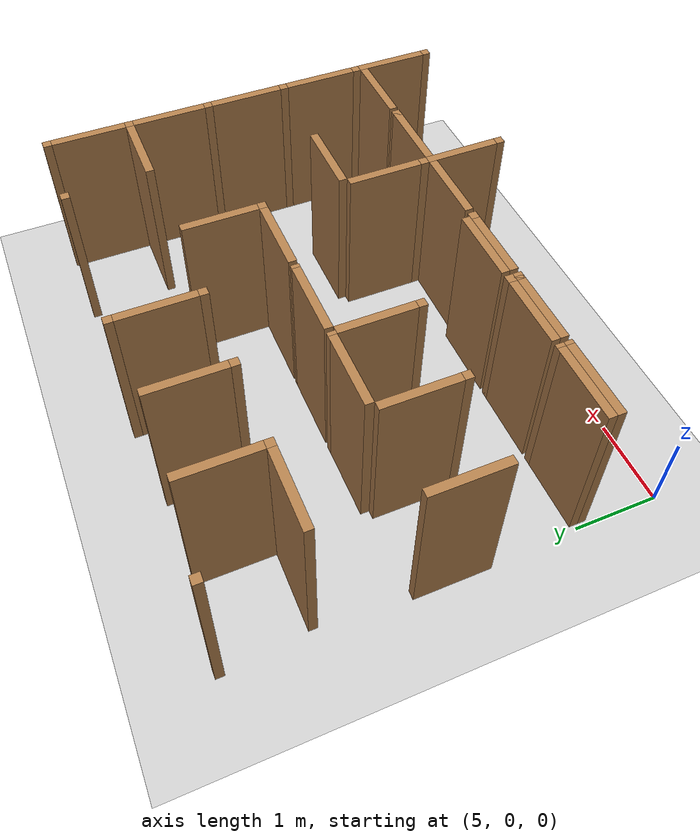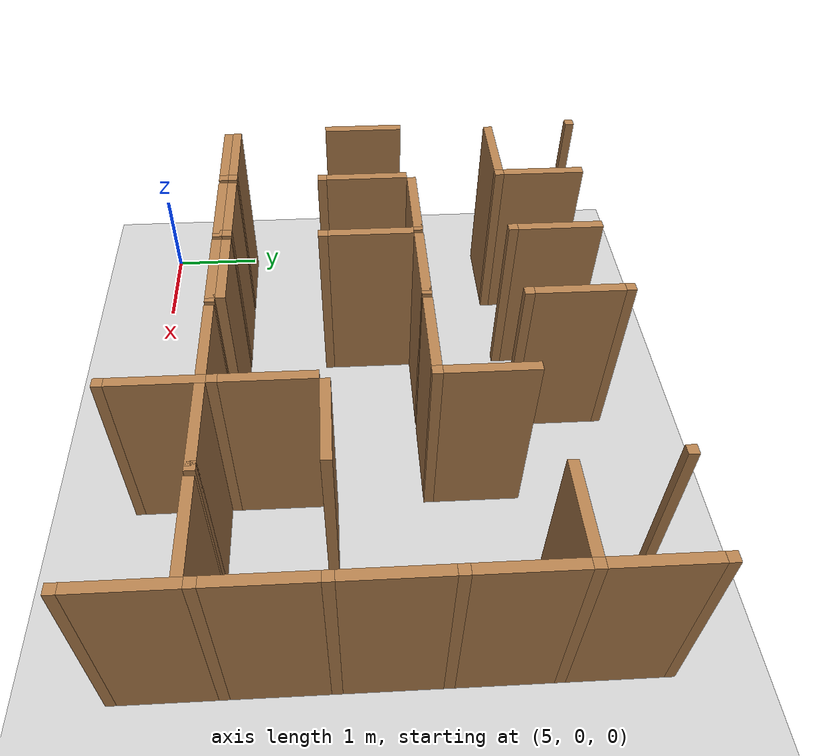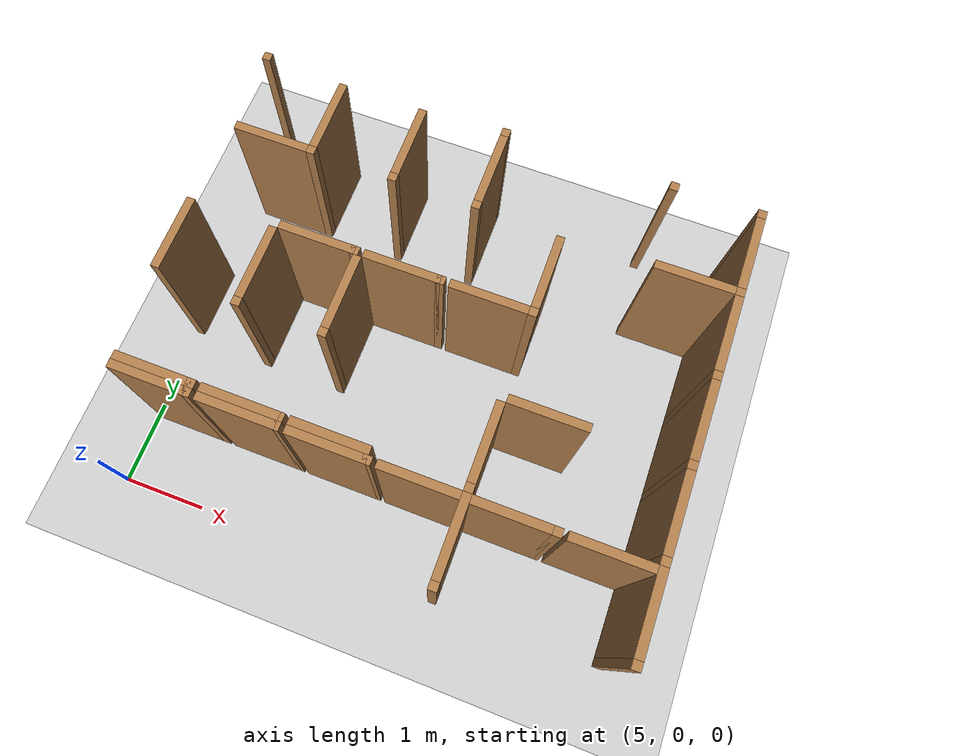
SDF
<sdf version="1.6">
 <world name="default">
  <include><uri>model://sun</uri></include>
  <model name="ground_plane">
   <static>true</static>
   <link name="link">
    <collision name="collision"><geometry><plane><size>12.0 12.0</size></plane></geometry></collision>
    <visual name="visual">
     <cast_shadows>false</cast_shadows>
     <geometry><plane><size>12.0 12.0</size></plane></geometry>
     <material>
      <script><uri>file://media/materials/scripts/gazebo.material</uri><name>Gazebo/Grey</name></script>
     </material>
    </visual>
   </link>
   <pose>6.0 6.0 0 0 0 0</pose>
  </model>
  <model name="vwall_0_9">
   <pose>9.0 0.5 1.0 0 0 0</pose>
   <link name="link">
    <collision name="collision"><geometry><box><size>0.1 0.9 2</size></box></geometry></collision>
    <visual name="visual">
     <geometry><box><size>0.1 0.9 2</size></box></geometry>
     <material>
      <script><uri>file://media/materials/scripts/gazebo.material</uri><name>Gazebo/Wood</name></script>
     </material>
    </visual>
   </link>
  </model>
  <model name="joint_9.0_0.0">
   <pose>9.0 0.0 1.0 0 0 0</pose>
   <link name="link">
    <collision name="collision"><geometry><box><size>0.1 0.1 2</size></box></geometry></collision>
    <visual name="visual">
     <geometry><box><size>0.1 0.1 2</size></box></geometry>
     <material>
      <script><uri>file://media/materials/scripts/gazebo.material</uri><name>Gazebo/Wood</name></script>
     </material>
    </visual>
   </link>
  </model>
  <model name="vwall_0_11">
   <pose>11.0 0.5 1.0 0 0 0</pose>
   <link name="link">
    <collision name="collision"><geometry><box><size>0.1 0.9 2</size></box></geometry></collision>
    <visual name="visual">
     <geometry><box><size>0.1 0.9 2</size></box></geometry>
     <material>
      <script><uri>file://media/materials/scripts/gazebo.material</uri><name>Gazebo/Wood</name></script>
     </material>
    </visual>
   </link>
  </model>
  <model name="joint_11.0_0.0">
   <pose>11.0 0.0 1.0 0 0 0</pose>
   <link name="link">
    <collision name="collision"><geometry><box><size>0.1 0.1 2</size></box></geometry></collision>
    <visual name="visual">
     <geometry><box><size>0.1 0.1 2</size></box></geometry>
     <material>
      <script><uri>file://media/materials/scripts/gazebo.material</uri><name>Gazebo/Wood</name></script>
     </material>
    </visual>
   </link>
  </model>
  <model name="vwall_1_9">
   <pose>9.0 1.5 1.0 0 0 0</pose>
   <link name="link">
    <collision name="collision"><geometry><box><size>0.1 0.9 2</size></box></geometry></collision>
    <visual name="visual">
     <geometry><box><size>0.1 0.9 2</size></box></geometry>
     <material>
      <script><uri>file://media/materials/scripts/gazebo.material</uri><name>Gazebo/Wood</name></script>
     </material>
    </visual>
   </link>
  </model>
  <model name="joint_9.0_1.0">
   <pose>9.0 1.0 1.0 0 0 0</pose>
   <link name="link">
    <collision name="collision"><geometry><box><size>0.1 0.1 2</size></box></geometry></collision>
    <visual name="visual">
     <geometry><box><size>0.1 0.1 2</size></box></geometry>
     <material>
      <script><uri>file://media/materials/scripts/gazebo.material</uri><name>Gazebo/Wood</name></script>
     </material>
    </visual>
   </link>
  </model>
  <model name="vwall_1_11">
   <pose>11.0 1.5 1.0 0 0 0</pose>
   <link name="link">
    <collision name="collision"><geometry><box><size>0.1 0.9 2</size></box></geometry></collision>
    <visual name="visual">
     <geometry><box><size>0.1 0.9 2</size></box></geometry>
     <material>
      <script><uri>file://media/materials/scripts/gazebo.material</uri><name>Gazebo/Wood</name></script>
     </material>
    </visual>
   </link>
  </model>
  <model name="joint_11.0_1.0">
   <pose>11.0 1.0 1.0 0 0 0</pose>
   <link name="link">
    <collision name="collision"><geometry><box><size>0.1 0.1 2</size></box></geometry></collision>
    <visual name="visual">
     <geometry><box><size>0.1 0.1 2</size></box></geometry>
     <material>
      <script><uri>file://media/materials/scripts/gazebo.material</uri><name>Gazebo/Wood</name></script>
     </material>
    </visual>
   </link>
  </model>
  <model name="vwall_2_5">
   <pose>5.0 2.5 1.0 0 0 0</pose>
   <link name="link">
    <collision name="collision"><geometry><box><size>0.1 0.9 2</size></box></geometry></collision>
    <visual name="visual">
     <geometry><box><size>0.1 0.9 2</size></box></geometry>
     <material>
      <script><uri>file://media/materials/scripts/gazebo.material</uri><name>Gazebo/Wood</name></script>
     </material>
    </visual>
   </link>
  </model>
  <model name="vwall_2_6">
   <pose>6.0 2.5 1.0 0 0 0</pose>
   <link name="link">
    <collision name="collision"><geometry><box><size>0.1 0.9 2</size></box></geometry></collision>
    <visual name="visual">
     <geometry><box><size>0.1 0.9 2</size></box></geometry>
     <material>
      <script><uri>file://media/materials/scripts/gazebo.material</uri><name>Gazebo/Wood</name></script>
     </material>
    </visual>
   </link>
  </model>
  <model name="joint_6.0_2.0">
   <pose>6.0 2.0 1.0 0 0 0</pose>
   <link name="link">
    <collision name="collision"><geometry><box><size>0.1 0.1 2</size></box></geometry></collision>
    <visual name="visual">
     <geometry><box><size>0.1 0.1 2</size></box></geometry>
     <material>
      <script><uri>file://media/materials/scripts/gazebo.material</uri><name>Gazebo/Wood</name></script>
     </material>
    </visual>
   </link>
  </model>
  <model name="vwall_2_7">
   <pose>7.0 2.5 1.0 0 0 0</pose>
   <link name="link">
    <collision name="collision"><geometry><box><size>0.1 0.9 2</size></box></geometry></collision>
    <visual name="visual">
     <geometry><box><size>0.1 0.9 2</size></box></geometry>
     <material>
      <script><uri>file://media/materials/scripts/gazebo.material</uri><name>Gazebo/Wood</name></script>
     </material>
    </visual>
   </link>
  </model>
  <model name="joint_7.0_2.0">
   <pose>7.0 2.0 1.0 0 0 0</pose>
   <link name="link">
    <collision name="collision"><geometry><box><size>0.1 0.1 2</size></box></geometry></collision>
    <visual name="visual">
     <geometry><box><size>0.1 0.1 2</size></box></geometry>
     <material>
      <script><uri>file://media/materials/scripts/gazebo.material</uri><name>Gazebo/Wood</name></script>
     </material>
    </visual>
   </link>
  </model>
  <model name="vwall_2_11">
   <pose>11.0 2.5 1.0 0 0 0</pose>
   <link name="link">
    <collision name="collision"><geometry><box><size>0.1 0.9 2</size></box></geometry></collision>
    <visual name="visual">
     <geometry><box><size>0.1 0.9 2</size></box></geometry>
     <material>
      <script><uri>file://media/materials/scripts/gazebo.material</uri><name>Gazebo/Wood</name></script>
     </material>
    </visual>
   </link>
  </model>
  <model name="joint_11.0_2.0">
   <pose>11.0 2.0 1.0 0 0 0</pose>
   <link name="link">
    <collision name="collision"><geometry><box><size>0.1 0.1 2</size></box></geometry></collision>
    <visual name="visual">
     <geometry><box><size>0.1 0.1 2</size></box></geometry>
     <material>
      <script><uri>file://media/materials/scripts/gazebo.material</uri><name>Gazebo/Wood</name></script>
     </material>
    </visual>
   </link>
  </model>
  <model name="vwall_3_9">
   <pose>9.0 3.5 1.0 0 0 0</pose>
   <link name="link">
    <collision name="collision"><geometry><box><size>0.1 0.9 2</size></box></geometry></collision>
    <visual name="visual">
     <geometry><box><size>0.1 0.9 2</size></box></geometry>
     <material>
      <script><uri>file://media/materials/scripts/gazebo.material</uri><name>Gazebo/Wood</name></script>
     </material>
    </visual>
   </link>
  </model>
  <model name="joint_9.0_3.0">
   <pose>9.0 3.0 1.0 0 0 0</pose>
   <link name="link">
    <collision name="collision"><geometry><box><size>0.1 0.1 2</size></box></geometry></collision>
    <visual name="visual">
     <geometry><box><size>0.1 0.1 2</size></box></geometry>
     <material>
      <script><uri>file://media/materials/scripts/gazebo.material</uri><name>Gazebo/Wood</name></script>
     </material>
    </visual>
   </link>
  </model>
  <model name="vwall_3_11">
   <pose>11.0 3.5 1.0 0 0 0</pose>
   <link name="link">
    <collision name="collision"><geometry><box><size>0.1 0.9 2</size></box></geometry></collision>
    <visual name="visual">
     <geometry><box><size>0.1 0.9 2</size></box></geometry>
     <material>
      <script><uri>file://media/materials/scripts/gazebo.material</uri><name>Gazebo/Wood</name></script>
     </material>
    </visual>
   </link>
  </model>
  <model name="joint_11.0_3.0">
   <pose>11.0 3.0 1.0 0 0 0</pose>
   <link name="link">
    <collision name="collision"><geometry><box><size>0.1 0.1 2</size></box></geometry></collision>
    <visual name="visual">
     <geometry><box><size>0.1 0.1 2</size></box></geometry>
     <material>
      <script><uri>file://media/materials/scripts/gazebo.material</uri><name>Gazebo/Wood</name></script>
     </material>
    </visual>
   </link>
  </model>
  <model name="vwall_4_6">
   <pose>6.0 4.5 1.0 0 0 0</pose>
   <link name="link">
    <collision name="collision"><geometry><box><size>0.1 0.9 2</size></box></geometry></collision>
    <visual name="visual">
     <geometry><box><size>0.1 0.9 2</size></box></geometry>
     <material>
      <script><uri>file://media/materials/scripts/gazebo.material</uri><name>Gazebo/Wood</name></script>
     </material>
    </visual>
   </link>
  </model>
  <model name="joint_6.0_4.0">
   <pose>6.0 4.0 1.0 0 0 0</pose>
   <link name="link">
    <collision name="collision"><geometry><box><size>0.1 0.1 2</size></box></geometry></collision>
    <visual name="visual">
     <geometry><box><size>0.1 0.1 2</size></box></geometry>
     <material>
      <script><uri>file://media/materials/scripts/gazebo.material</uri><name>Gazebo/Wood</name></script>
     </material>
    </visual>
   </link>
  </model>
  <model name="vwall_4_7">
   <pose>7.0 4.5 1.0 0 0 0</pose>
   <link name="link">
    <collision name="collision"><geometry><box><size>0.1 0.9 2</size></box></geometry></collision>
    <visual name="visual">
     <geometry><box><size>0.1 0.9 2</size></box></geometry>
     <material>
      <script><uri>file://media/materials/scripts/gazebo.material</uri><name>Gazebo/Wood</name></script>
     </material>
    </visual>
   </link>
  </model>
  <model name="joint_7.0_4.0">
   <pose>7.0 4.0 1.0 0 0 0</pose>
   <link name="link">
    <collision name="collision"><geometry><box><size>0.1 0.1 2</size></box></geometry></collision>
    <visual name="visual">
     <geometry><box><size>0.1 0.1 2</size></box></geometry>
     <material>
      <script><uri>file://media/materials/scripts/gazebo.material</uri><name>Gazebo/Wood</name></script>
     </material>
    </visual>
   </link>
  </model>
  <model name="vwall_4_8">
   <pose>8.0 4.5 1.0 0 0 0</pose>
   <link name="link">
    <collision name="collision"><geometry><box><size>0.1 0.9 2</size></box></geometry></collision>
    <visual name="visual">
     <geometry><box><size>0.1 0.9 2</size></box></geometry>
     <material>
      <script><uri>file://media/materials/scripts/gazebo.material</uri><name>Gazebo/Wood</name></script>
     </material>
    </visual>
   </link>
  </model>
  <model name="joint_8.0_4.0">
   <pose>8.0 4.0 1.0 0 0 0</pose>
   <link name="link">
    <collision name="collision"><geometry><box><size>0.1 0.1 2</size></box></geometry></collision>
    <visual name="visual">
     <geometry><box><size>0.1 0.1 2</size></box></geometry>
     <material>
      <script><uri>file://media/materials/scripts/gazebo.material</uri><name>Gazebo/Wood</name></script>
     </material>
    </visual>
   </link>
  </model>
  <model name="vwall_4_11">
   <pose>11.0 4.5 1.0 0 0 0</pose>
   <link name="link">
    <collision name="collision"><geometry><box><size>0.1 0.9 2</size></box></geometry></collision>
    <visual name="visual">
     <geometry><box><size>0.1 0.9 2</size></box></geometry>
     <material>
      <script><uri>file://media/materials/scripts/gazebo.material</uri><name>Gazebo/Wood</name></script>
     </material>
    </visual>
   </link>
  </model>
  <model name="joint_11.0_4.0">
   <pose>11.0 4.0 1.0 0 0 0</pose>
   <link name="link">
    <collision name="collision"><geometry><box><size>0.1 0.1 2</size></box></geometry></collision>
    <visual name="visual">
     <geometry><box><size>0.1 0.1 2</size></box></geometry>
     <material>
      <script><uri>file://media/materials/scripts/gazebo.material</uri><name>Gazebo/Wood</name></script>
     </material>
    </visual>
   </link>
  </model>
  <model name="joint_5.0_5.0">
   <pose>5.0 5.0 1.0 0 0 0</pose>
   <link name="link">
    <collision name="collision"><geometry><box><size>0.1 0.1 2</size></box></geometry></collision>
    <visual name="visual">
     <geometry><box><size>0.1 0.1 2</size></box></geometry>
     <material>
      <script><uri>file://media/materials/scripts/gazebo.material</uri><name>Gazebo/Wood</name></script>
     </material>
    </visual>
   </link>
  </model>
  <model name="joint_8.0_5.0">
   <pose>8.0 5.0 1.0 0 0 0</pose>
   <link name="link">
    <collision name="collision"><geometry><box><size>0.1 0.1 2</size></box></geometry></collision>
    <visual name="visual">
     <geometry><box><size>0.1 0.1 2</size></box></geometry>
     <material>
      <script><uri>file://media/materials/scripts/gazebo.material</uri><name>Gazebo/Wood</name></script>
     </material>
    </visual>
   </link>
  </model>
  <model name="joint_10.0_5.0">
   <pose>10.0 5.0 1.0 0 0 0</pose>
   <link name="link">
    <collision name="collision"><geometry><box><size>0.1 0.1 2</size></box></geometry></collision>
    <visual name="visual">
     <geometry><box><size>0.1 0.1 2</size></box></geometry>
     <material>
      <script><uri>file://media/materials/scripts/gazebo.material</uri><name>Gazebo/Wood</name></script>
     </material>
    </visual>
   </link>
  </model>
  <model name="joint_11.0_5.0">
   <pose>11.0 5.0 1.0 0 0 0</pose>
   <link name="link">
    <collision name="collision"><geometry><box><size>0.1 0.1 2</size></box></geometry></collision>
    <visual name="visual">
     <geometry><box><size>0.1 0.1 2</size></box></geometry>
     <material>
      <script><uri>file://media/materials/scripts/gazebo.material</uri><name>Gazebo/Wood</name></script>
     </material>
    </visual>
   </link>
  </model>
  <model name="hwall_0_5">
   <pose>5.5 0.9 1.0 0 0 0</pose>
   <link name="link">
    <collision name="collision"><geometry><box><size>0.9 0.1 2</size></box></geometry></collision>
    <visual name="visual">
     <geometry><box><size>0.9 0.1 2</size></box></geometry>
     <material>
      <script><uri>file://media/materials/scripts/gazebo.material</uri><name>Gazebo/Wood</name></script>
     </material>
    </visual>
   </link>
  </model>
  <model name="joint_5.95_0.9">
   <pose>5.95 0.9 1.0 0 0 0</pose>
   <link name="link">
    <collision name="collision"><geometry><box><size>0.1 0.1 2</size></box></geometry></collision>
    <visual name="visual">
     <geometry><box><size>0.1 0.1 2</size></box></geometry>
     <material>
      <script><uri>file://media/materials/scripts/gazebo.material</uri><name>Gazebo/Wood</name></script>
     </material>
    </visual>
   </link>
  </model>
  <model name="hwall_0_6">
   <pose>6.5 0.9 1.0 0 0 0</pose>
   <link name="link">
    <collision name="collision"><geometry><box><size>0.9 0.1 2</size></box></geometry></collision>
    <visual name="visual">
     <geometry><box><size>0.9 0.1 2</size></box></geometry>
     <material>
      <script><uri>file://media/materials/scripts/gazebo.material</uri><name>Gazebo/Wood</name></script>
     </material>
    </visual>
   </link>
  </model>
  <model name="joint_6.95_0.9">
   <pose>6.95 0.9 1.0 0 0 0</pose>
   <link name="link">
    <collision name="collision"><geometry><box><size>0.1 0.1 2</size></box></geometry></collision>
    <visual name="visual">
     <geometry><box><size>0.1 0.1 2</size></box></geometry>
     <material>
      <script><uri>file://media/materials/scripts/gazebo.material</uri><name>Gazebo/Wood</name></script>
     </material>
    </visual>
   </link>
  </model>
  <model name="hwall_0_7">
   <pose>7.5 0.9 1.0 0 0 0</pose>
   <link name="link">
    <collision name="collision"><geometry><box><size>0.9 0.1 2</size></box></geometry></collision>
    <visual name="visual">
     <geometry><box><size>0.9 0.1 2</size></box></geometry>
     <material>
      <script><uri>file://media/materials/scripts/gazebo.material</uri><name>Gazebo/Wood</name></script>
     </material>
    </visual>
   </link>
  </model>
  <model name="joint_7.95_0.9">
   <pose>7.95 0.9 1.0 0 0 0</pose>
   <link name="link">
    <collision name="collision"><geometry><box><size>0.1 0.1 2</size></box></geometry></collision>
    <visual name="visual">
     <geometry><box><size>0.1 0.1 2</size></box></geometry>
     <material>
      <script><uri>file://media/materials/scripts/gazebo.material</uri><name>Gazebo/Wood</name></script>
     </material>
    </visual>
   </link>
  </model>
  <model name="hwall_0_8">
   <pose>8.5 0.9 1.0 0 0 0</pose>
   <link name="link">
    <collision name="collision"><geometry><box><size>0.9 0.1 2</size></box></geometry></collision>
    <visual name="visual">
     <geometry><box><size>0.9 0.1 2</size></box></geometry>
     <material>
      <script><uri>file://media/materials/scripts/gazebo.material</uri><name>Gazebo/Wood</name></script>
     </material>
    </visual>
   </link>
  </model>
  <model name="hwall_0_9">
   <pose>9.5 0.9 1.0 0 0 0</pose>
   <link name="link">
    <collision name="collision"><geometry><box><size>0.9 0.1 2</size></box></geometry></collision>
    <visual name="visual">
     <geometry><box><size>0.9 0.1 2</size></box></geometry>
     <material>
      <script><uri>file://media/materials/scripts/gazebo.material</uri><name>Gazebo/Wood</name></script>
     </material>
    </visual>
   </link>
  </model>
  <model name="joint_9.95_0.9">
   <pose>9.95 0.9 1.0 0 0 0</pose>
   <link name="link">
    <collision name="collision"><geometry><box><size>0.1 0.1 2</size></box></geometry></collision>
    <visual name="visual">
     <geometry><box><size>0.1 0.1 2</size></box></geometry>
     <material>
      <script><uri>file://media/materials/scripts/gazebo.material</uri><name>Gazebo/Wood</name></script>
     </material>
    </visual>
   </link>
  </model>
  <model name="hwall_0_10">
   <pose>10.5 0.9 1.0 0 0 0</pose>
   <link name="link">
    <collision name="collision"><geometry><box><size>0.9 0.1 2</size></box></geometry></collision>
    <visual name="visual">
     <geometry><box><size>0.9 0.1 2</size></box></geometry>
     <material>
      <script><uri>file://media/materials/scripts/gazebo.material</uri><name>Gazebo/Wood</name></script>
     </material>
    </visual>
   </link>
  </model>
  <model name="hwall_1_5">
   <pose>5.5 1.0 1.0 0 0 0</pose>
   <link name="link">
    <collision name="collision"><geometry><box><size>0.9 0.1 2</size></box></geometry></collision>
    <visual name="visual">
     <geometry><box><size>0.9 0.1 2</size></box></geometry>
     <material>
      <script><uri>file://media/materials/scripts/gazebo.material</uri><name>Gazebo/Wood</name></script>
     </material>
    </visual>
   </link>
  </model>
  <model name="joint_5.95_1.0">
   <pose>5.95 1.0 1.0 0 0 0</pose>
   <link name="link">
    <collision name="collision"><geometry><box><size>0.1 0.1 2</size></box></geometry></collision>
    <visual name="visual">
     <geometry><box><size>0.1 0.1 2</size></box></geometry>
     <material>
      <script><uri>file://media/materials/scripts/gazebo.material</uri><name>Gazebo/Wood</name></script>
     </material>
    </visual>
   </link>
  </model>
  <model name="hwall_1_6">
   <pose>6.5 1.0 1.0 0 0 0</pose>
   <link name="link">
    <collision name="collision"><geometry><box><size>0.9 0.1 2</size></box></geometry></collision>
    <visual name="visual">
     <geometry><box><size>0.9 0.1 2</size></box></geometry>
     <material>
      <script><uri>file://media/materials/scripts/gazebo.material</uri><name>Gazebo/Wood</name></script>
     </material>
    </visual>
   </link>
  </model>
  <model name="joint_6.95_1.0">
   <pose>6.95 1.0 1.0 0 0 0</pose>
   <link name="link">
    <collision name="collision"><geometry><box><size>0.1 0.1 2</size></box></geometry></collision>
    <visual name="visual">
     <geometry><box><size>0.1 0.1 2</size></box></geometry>
     <material>
      <script><uri>file://media/materials/scripts/gazebo.material</uri><name>Gazebo/Wood</name></script>
     </material>
    </visual>
   </link>
  </model>
  <model name="hwall_1_7">
   <pose>7.5 1.0 1.0 0 0 0</pose>
   <link name="link">
    <collision name="collision"><geometry><box><size>0.9 0.1 2</size></box></geometry></collision>
    <visual name="visual">
     <geometry><box><size>0.9 0.1 2</size></box></geometry>
     <material>
      <script><uri>file://media/materials/scripts/gazebo.material</uri><name>Gazebo/Wood</name></script>
     </material>
    </visual>
   </link>
  </model>
  <model name="hwall_2_9">
   <pose>9.5 2.0 1.0 0 0 0</pose>
   <link name="link">
    <collision name="collision"><geometry><box><size>0.9 0.1 2</size></box></geometry></collision>
    <visual name="visual">
     <geometry><box><size>0.9 0.1 2</size></box></geometry>
     <material>
      <script><uri>file://media/materials/scripts/gazebo.material</uri><name>Gazebo/Wood</name></script>
     </material>
    </visual>
   </link>
  </model>
  <model name="hwall_3_6">
   <pose>6.5 3.0 1.0 0 0 0</pose>
   <link name="link">
    <collision name="collision"><geometry><box><size>0.9 0.1 2</size></box></geometry></collision>
    <visual name="visual">
     <geometry><box><size>0.9 0.1 2</size></box></geometry>
     <material>
      <script><uri>file://media/materials/scripts/gazebo.material</uri><name>Gazebo/Wood</name></script>
     </material>
    </visual>
   </link>
  </model>
  <model name="joint_6.95_3.0">
   <pose>6.95 3.0 1.0 0 0 0</pose>
   <link name="link">
    <collision name="collision"><geometry><box><size>0.1 0.1 2</size></box></geometry></collision>
    <visual name="visual">
     <geometry><box><size>0.1 0.1 2</size></box></geometry>
     <material>
      <script><uri>file://media/materials/scripts/gazebo.material</uri><name>Gazebo/Wood</name></script>
     </material>
    </visual>
   </link>
  </model>
  <model name="hwall_3_7">
   <pose>7.5 3.0 1.0 0 0 0</pose>
   <link name="link">
    <collision name="collision"><geometry><box><size>0.9 0.1 2</size></box></geometry></collision>
    <visual name="visual">
     <geometry><box><size>0.9 0.1 2</size></box></geometry>
     <material>
      <script><uri>file://media/materials/scripts/gazebo.material</uri><name>Gazebo/Wood</name></script>
     </material>
    </visual>
   </link>
  </model>
  <model name="joint_7.95_3.0">
   <pose>7.95 3.0 1.0 0 0 0</pose>
   <link name="link">
    <collision name="collision"><geometry><box><size>0.1 0.1 2</size></box></geometry></collision>
    <visual name="visual">
     <geometry><box><size>0.1 0.1 2</size></box></geometry>
     <material>
      <script><uri>file://media/materials/scripts/gazebo.material</uri><name>Gazebo/Wood</name></script>
     </material>
    </visual>
   </link>
  </model>
  <model name="hwall_3_8">
   <pose>8.5 3.0 1.0 0 0 0</pose>
   <link name="link">
    <collision name="collision"><geometry><box><size>0.9 0.1 2</size></box></geometry></collision>
    <visual name="visual">
     <geometry><box><size>0.9 0.1 2</size></box></geometry>
     <material>
      <script><uri>file://media/materials/scripts/gazebo.material</uri><name>Gazebo/Wood</name></script>
     </material>
    </visual>
   </link>
  </model>
  <model name="hwall_4_5">
   <pose>5.5 4.0 1.0 0 0 0</pose>
   <link name="link">
    <collision name="collision"><geometry><box><size>0.9 0.1 2</size></box></geometry></collision>
    <visual name="visual">
     <geometry><box><size>0.9 0.1 2</size></box></geometry>
     <material>
      <script><uri>file://media/materials/scripts/gazebo.material</uri><name>Gazebo/Wood</name></script>
     </material>
    </visual>
   </link>
  </model>
  <model name="hwall_4_10">
   <pose>10.5 4.0 1.0 0 0 0</pose>
   <link name="link">
    <collision name="collision"><geometry><box><size>0.9 0.1 2</size></box></geometry></collision>
    <visual name="visual">
     <geometry><box><size>0.9 0.1 2</size></box></geometry>
     <material>
      <script><uri>file://media/materials/scripts/gazebo.material</uri><name>Gazebo/Wood</name></script>
     </material>
    </visual>
   </link>
  </model>
 </world>
</sdf>
